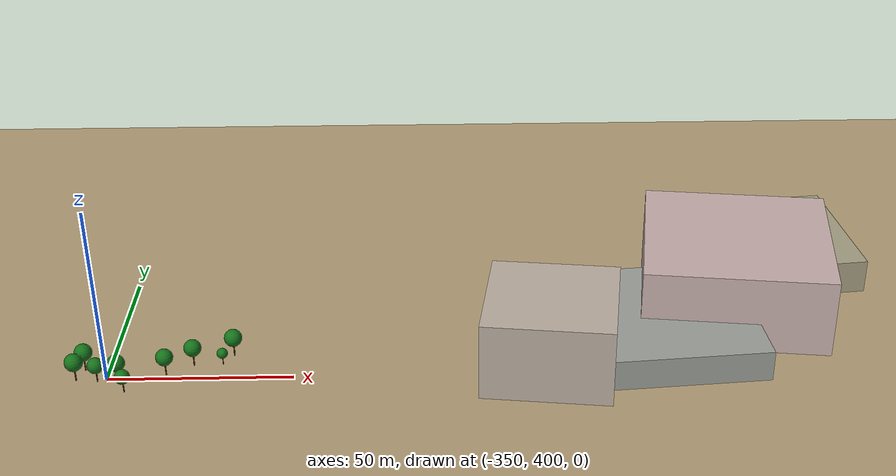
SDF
<sdf version="1.9">
 <world name="crossroad_world">
  <model name="ground_plane">
   <static>true</static>
   <pose>0 0 -0.05 0 0 0</pose>
   <link name="link">
    <collision name="collision">
     <geometry><plane><normal>0 0 1</normal><size>10000 10000</size></plane></geometry>
    </collision>
    <visual name="visual">
     <geometry><plane><normal>0 0 1</normal><size>15000 15000</size></plane></geometry>
     <material><ambient>0.68 0.60 0.45 1</ambient><diffuse>0.68 0.60 0.45 1</diffuse></material>
    </visual>
   </link>
  </model>
  <model name="tree_366">
   <static>true</static>
   <pose>-358.105 399.691 0 0 0 0</pose>
   <link name="link">
    <visual name="trunk">
     <pose>0 0 2.075 0 0 0</pose>
     <geometry><cylinder><radius>0.182</radius><length>4.149</length></cylinder></geometry>
     <material><ambient>0.38 0.22 0.08 1</ambient><diffuse>0.38 0.22 0.08 1</diffuse></material>
    </visual>
    <visual name="canopy">
     <pose>0 0 5.751 0 0 0</pose>
     <geometry><sphere><radius>2.464</radius></sphere></geometry>
     <material><ambient>0.08 0.44 0.10 1</ambient><diffuse>0.08 0.44 0.10 1</diffuse></material>
    </visual>
    <collision name="col">
     <pose>0 0 2.075 0 0 0</pose>
     <geometry><cylinder><radius>0.182</radius><length>4.149</length></cylinder></geometry>
    </collision>
   </link>
  </model>
  <model name="tree_370">
   <static>true</static>
   <pose>-334.448 401.999 0 0 0 0</pose>
   <link name="link">
    <visual name="trunk">
     <pose>0 0 1.987 0 0 0</pose>
     <geometry><cylinder><radius>0.174</radius><length>3.974</length></cylinder></geometry>
     <material><ambient>0.38 0.22 0.08 1</ambient><diffuse>0.38 0.22 0.08 1</diffuse></material>
    </visual>
    <visual name="canopy">
     <pose>0 0 5.507 0 0 0</pose>
     <geometry><sphere><radius>2.359</radius></sphere></geometry>
     <material><ambient>0.08 0.44 0.10 1</ambient><diffuse>0.08 0.44 0.10 1</diffuse></material>
    </visual>
    <collision name="col">
     <pose>0 0 1.987 0 0 0</pose>
     <geometry><cylinder><radius>0.174</radius><length>3.974</length></cylinder></geometry>
    </collision>
   </link>
  </model>
  <model name="tree_371">
   <static>true</static>
   <pose>-352.239 398.943 0 0 0 0</pose>
   <link name="link">
    <visual name="trunk">
     <pose>0 0 1.857 0 0 0</pose>
     <geometry><cylinder><radius>0.162</radius><length>3.714</length></cylinder></geometry>
     <material><ambient>0.38 0.22 0.08 1</ambient><diffuse>0.38 0.22 0.08 1</diffuse></material>
    </visual>
    <visual name="canopy">
     <pose>0 0 5.147 0 0 0</pose>
     <geometry><sphere><radius>2.205</radius></sphere></geometry>
     <material><ambient>0.08 0.44 0.10 1</ambient><diffuse>0.08 0.44 0.10 1</diffuse></material>
    </visual>
    <collision name="col">
     <pose>0 0 1.857 0 0 0</pose>
     <geometry><cylinder><radius>0.162</radius><length>3.714</length></cylinder></geometry>
    </collision>
   </link>
  </model>
  <model name="tree_378">
   <static>true</static>
   <pose>-327.531 406.372 0 0 0 0</pose>
   <link name="link">
    <visual name="trunk">
     <pose>0 0 2.010 0 0 0</pose>
     <geometry><cylinder><radius>0.176</radius><length>4.021</length></cylinder></geometry>
     <material><ambient>0.38 0.22 0.08 1</ambient><diffuse>0.38 0.22 0.08 1</diffuse></material>
    </visual>
    <visual name="canopy">
     <pose>0 0 5.573 0 0 0</pose>
     <geometry><sphere><radius>2.387</radius></sphere></geometry>
     <material><ambient>0.08 0.44 0.10 1</ambient><diffuse>0.08 0.44 0.10 1</diffuse></material>
    </visual>
    <collision name="col">
     <pose>0 0 2.010 0 0 0</pose>
     <geometry><cylinder><radius>0.176</radius><length>4.021</length></cylinder></geometry>
    </collision>
   </link>
  </model>
  <model name="tree_380">
   <static>true</static>
   <pose>-319.735 406.777 0 0 0 0</pose>
   <link name="link">
    <visual name="trunk">
     <pose>0 0 1.251 0 0 0</pose>
     <geometry><cylinder><radius>0.109</radius><length>2.502</length></cylinder></geometry>
     <material><ambient>0.38 0.22 0.08 1</ambient><diffuse>0.38 0.22 0.08 1</diffuse></material>
    </visual>
    <visual name="canopy">
     <pose>0 0 3.468 0 0 0</pose>
     <geometry><sphere><radius>1.486</radius></sphere></geometry>
     <material><ambient>0.08 0.44 0.10 1</ambient><diffuse>0.08 0.44 0.10 1</diffuse></material>
    </visual>
    <collision name="col">
     <pose>0 0 1.251 0 0 0</pose>
     <geometry><cylinder><radius>0.109</radius><length>2.502</length></cylinder></geometry>
    </collision>
   </link>
  </model>
  <model name="tree_381">
   <static>true</static>
   <pose>-356.598 404.769 0 0 0 0</pose>
   <link name="link">
    <visual name="trunk">
     <pose>0 0 2.048 0 0 0</pose>
     <geometry><cylinder><radius>0.179</radius><length>4.097</length></cylinder></geometry>
     <material><ambient>0.38 0.22 0.08 1</ambient><diffuse>0.38 0.22 0.08 1</diffuse></material>
    </visual>
    <visual name="canopy">
     <pose>0 0 5.678 0 0 0</pose>
     <geometry><sphere><radius>2.433</radius></sphere></geometry>
     <material><ambient>0.08 0.44 0.10 1</ambient><diffuse>0.08 0.44 0.10 1</diffuse></material>
    </visual>
    <collision name="col">
     <pose>0 0 2.048 0 0 0</pose>
     <geometry><cylinder><radius>0.179</radius><length>4.097</length></cylinder></geometry>
    </collision>
   </link>
  </model>
  <model name="tree_383">
   <static>true</static>
   <pose>-344.252 393.885 0 0 0 0</pose>
   <link name="link">
    <visual name="trunk">
     <pose>0 0 1.728 0 0 0</pose>
     <geometry><cylinder><radius>0.151</radius><length>3.457</length></cylinder></geometry>
     <material><ambient>0.38 0.22 0.08 1</ambient><diffuse>0.38 0.22 0.08 1</diffuse></material>
    </visual>
    <visual name="canopy">
     <pose>0 0 4.791 0 0 0</pose>
     <geometry><sphere><radius>2.052</radius></sphere></geometry>
     <material><ambient>0.08 0.44 0.10 1</ambient><diffuse>0.08 0.44 0.10 1</diffuse></material>
    </visual>
    <collision name="col">
     <pose>0 0 1.728 0 0 0</pose>
     <geometry><cylinder><radius>0.151</radius><length>3.457</length></cylinder></geometry>
    </collision>
   </link>
  </model>
  <model name="tree_385">
   <static>true</static>
   <pose>-346.850 399.495 0 0 0 0</pose>
   <link name="link">
    <visual name="trunk">
     <pose>0 0 1.982 0 0 0</pose>
     <geometry><cylinder><radius>0.173</radius><length>3.964</length></cylinder></geometry>
     <material><ambient>0.38 0.22 0.08 1</ambient><diffuse>0.38 0.22 0.08 1</diffuse></material>
    </visual>
    <visual name="canopy">
     <pose>0 0 5.494 0 0 0</pose>
     <geometry><sphere><radius>2.354</radius></sphere></geometry>
     <material><ambient>0.08 0.44 0.10 1</ambient><diffuse>0.08 0.44 0.10 1</diffuse></material>
    </visual>
    <collision name="col">
     <pose>0 0 1.982 0 0 0</pose>
     <geometry><cylinder><radius>0.173</radius><length>3.964</length></cylinder></geometry>
    </collision>
   </link>
  </model>
  <model name="tree_388">
   <static>true</static>
   <pose>-317.133 411.019 0 0 0 0</pose>
   <link name="link">
    <visual name="trunk">
     <pose>0 0 2.063 0 0 0</pose>
     <geometry><cylinder><radius>0.181</radius><length>4.127</length></cylinder></geometry>
     <material><ambient>0.38 0.22 0.08 1</ambient><diffuse>0.38 0.22 0.08 1</diffuse></material>
    </visual>
    <visual name="canopy">
     <pose>0 0 5.720 0 0 0</pose>
     <geometry><sphere><radius>2.450</radius></sphere></geometry>
     <material><ambient>0.08 0.44 0.10 1</ambient><diffuse>0.08 0.44 0.10 1</diffuse></material>
    </visual>
    <collision name="col">
     <pose>0 0 2.063 0 0 0</pose>
     <geometry><cylinder><radius>0.181</radius><length>4.127</length></cylinder></geometry>
    </collision>
   </link>
  </model>
  <model name="building_113">
   <static>true</static>
   <pose>-230.630 403.452 10.996 0 0 -0.132</pose>
   <link name="link">
    <visual name="body">
     <geometry><box><size>35.35 35.29 21.99</size></box></geometry>
     <material><ambient>0.72 0.67 0.62 1</ambient><diffuse>0.72 0.67 0.62 1</diffuse></material>
    </visual>
    <collision name="col"><geometry><box><size>35.35 35.29 21.99</size></box></geometry></collision>
   </link>
  </model>
  <model name="building_114">
   <static>true</static>
   <pose>-198.592 417.237 4.382 0 0 0.087</pose>
   <link name="link">
    <visual name="body">
     <geometry><box><size>50.25 49.50 8.76</size></box></geometry>
     <material><ambient>0.60 0.61 0.59 1</ambient><diffuse>0.60 0.61 0.59 1</diffuse></material>
    </visual>
    <collision name="col"><geometry><box><size>50.25 49.50 8.76</size></box></geometry></collision>
   </link>
  </model>
  <model name="building_115">
   <static>true</static>
   <pose>-175.492 435.517 11.271 0 0 -0.135</pose>
   <link name="link">
    <visual name="body">
     <geometry><box><size>52.76 52.03 22.54</size></box></geometry>
     <material><ambient>0.76 0.67 0.66 1</ambient><diffuse>0.76 0.67 0.66 1</diffuse></material>
    </visual>
    <collision name="col"><geometry><box><size>52.76 52.03 22.54</size></box></geometry></collision>
   </link>
  </model>
  <model name="building_534">
   <static>true</static>
   <pose>-159.973 460.851 4.938 0 0 0.113</pose>
   <link name="link">
    <visual name="body">
     <geometry><box><size>45.23 44.24 9.88</size></box></geometry>
     <material><ambient>0.63 0.61 0.50 1</ambient><diffuse>0.63 0.61 0.50 1</diffuse></material>
    </visual>
    <collision name="col"><geometry><box><size>45.23 44.24 9.88</size></box></geometry></collision>
   </link>
  </model>
 </world>
</sdf>
